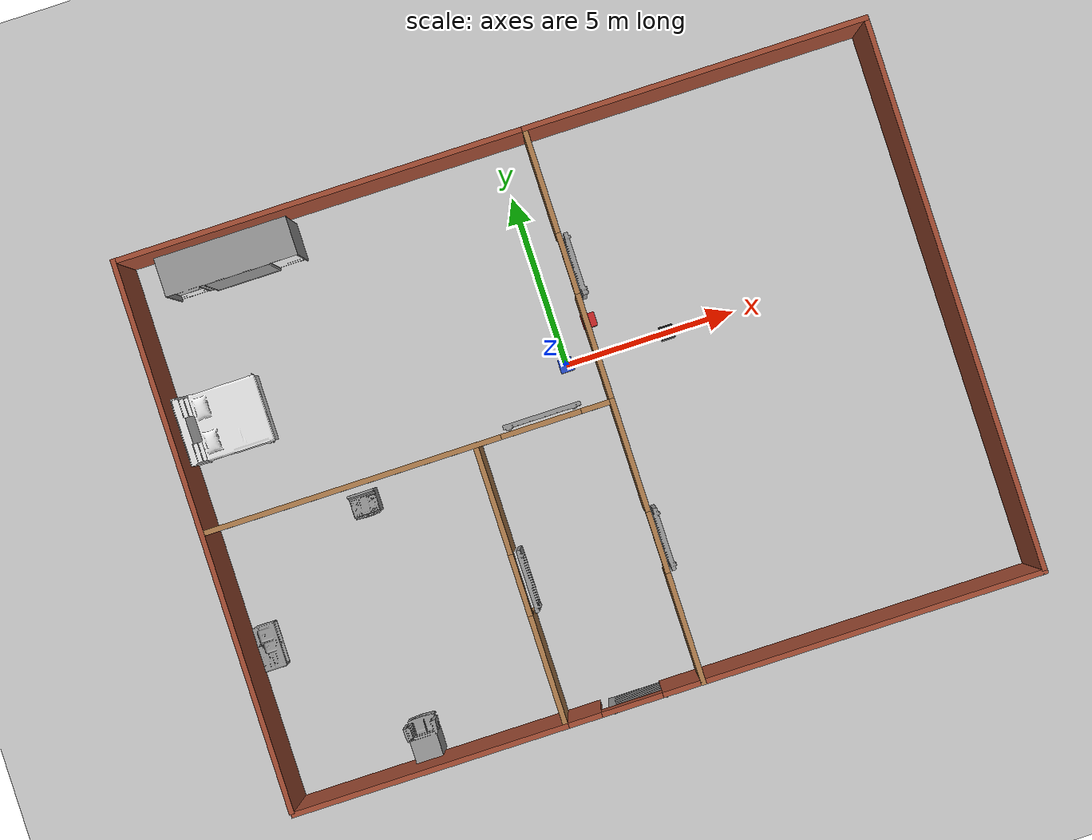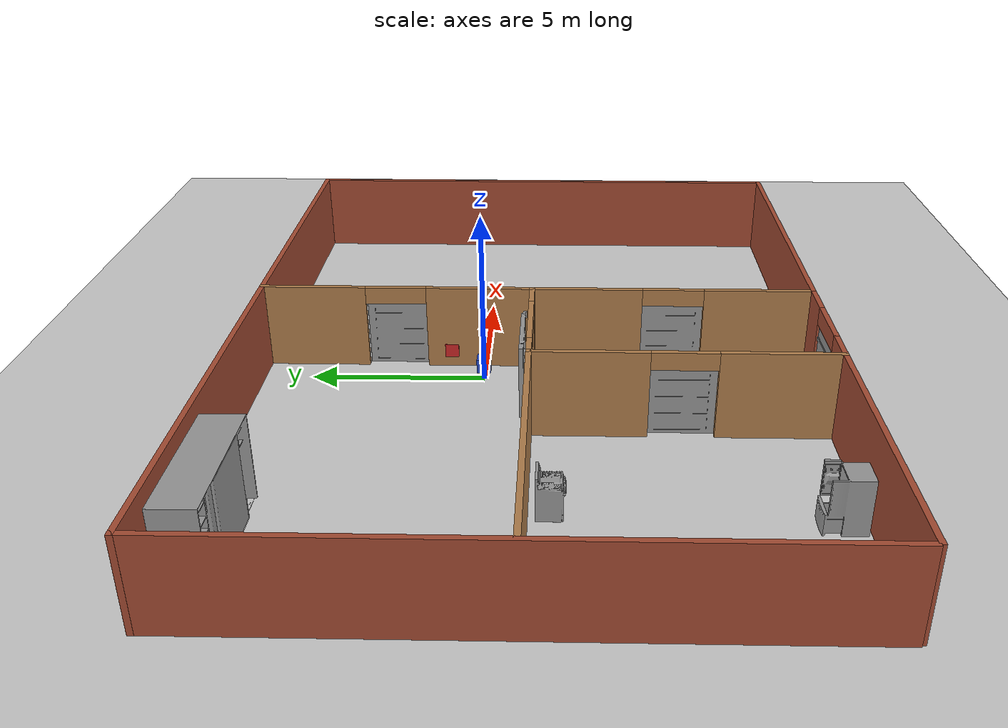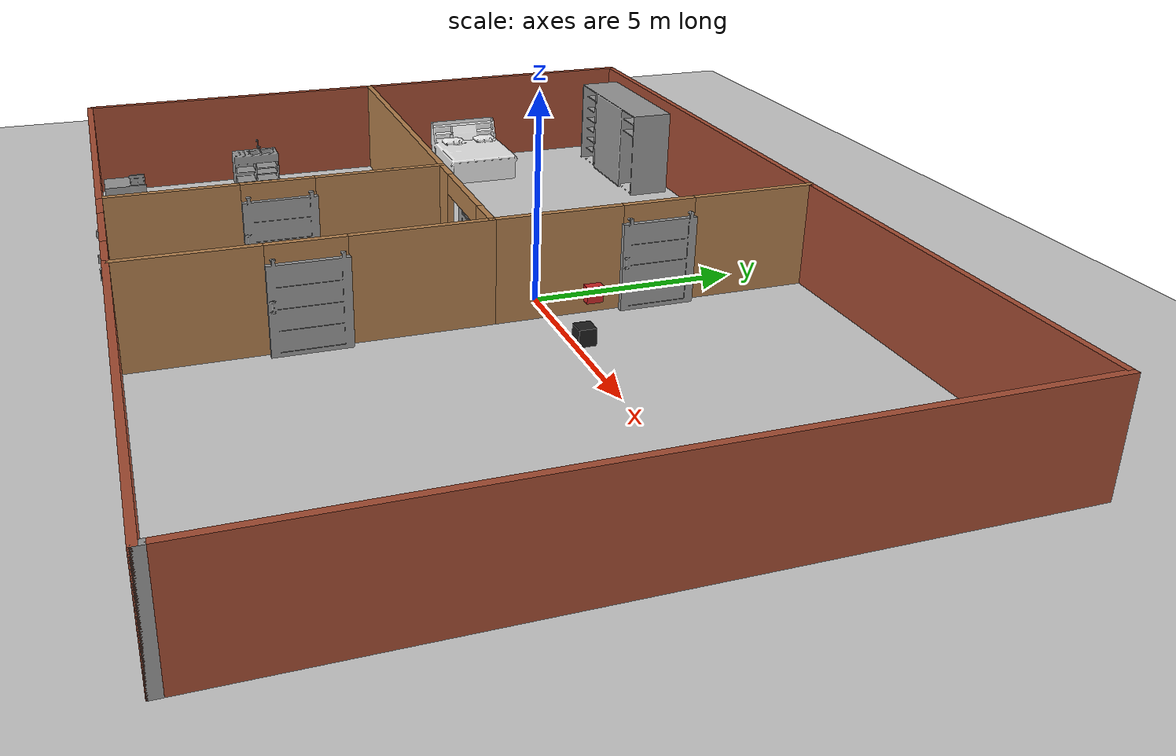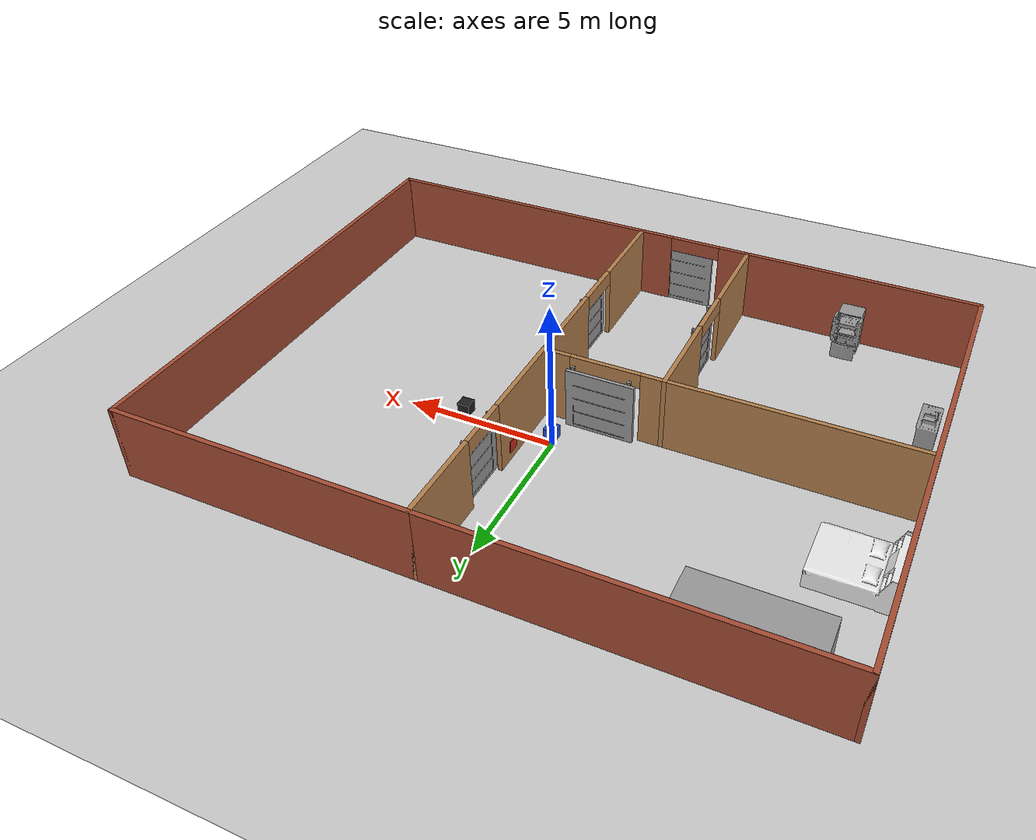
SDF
<sdf version="1.5">
 <world name="default">
  <frame name="world"/>
  <include><uri>model://sun</uri></include>
  <include><uri>model://ground_plane</uri></include>
  <include><uri>model://HouseWalls</uri><pose>-0.1 -1.5 0 0 0 0</pose></include>
  <include><pose>-8.1 7.7 0  0 0 1.57</pose><uri>model://Bed</uri></include>
  <include><pose>-7 -9 0  0 0 3.14</pose><uri>model://Fridge</uri></include>
  <include><pose>-10.4 -5 0 1.57 0 1.57</pose><uri>model://Sink</uri></include>
  <include><pose>-7 -2.3 0 1.57 0 0</pose><uri>model://Stove</uri></include>
  <include><pose>-8 5.76 0 0 0 0</pose><uri>model://Wardrobe</uri></include>
  <include><pose>-1.8 -9.5 0 0 0 0</pose><uri>model://DoorEntry</uri></include>
  <include>
   <pose>1.1 -6.35 0 0 0 1.57</pose>
   <uri>model://Door1</uri>
   <plugin name="door1" filename="libupdate_door.so"/>
  </include>
  <include>
   <pose>1.1 1.65 0 0 0 1.57</pose>
   <uri>model://Door2</uri>
   <plugin name="door2" filename="libupdate_door.so"/>
  </include>
  <include>
   <pose>-2.2 -1.15 0 0 0 0</pose>
   <uri>model://Door3</uri>
   <plugin name="door3" filename="libupdate_door.so"/>
  </include>
  <include>
   <pose>-2.85 -6.3 0  0 0 1.57</pose>
   <uri>model://Door4</uri>
   <plugin name="door3" filename="libupdate_door.so"/>
  </include>
  <model name="box1">
   <pose>0 0 0.5 0 0 0</pose>
   <link name="link">
    <inertial><mass>0.1</mass></inertial>
    <collision name="collision">
     <geometry><box><size>0.4 0.4 0.4</size></box></geometry>
     <surface>
      <friction><ode><mu>1000000000000000</mu><mu2>1000000000000</mu2></ode></friction>
      <contact><ode><max_vel>0.1</max_vel><min_depth>0.002</min_depth></ode></contact>
     </surface>
    </collision>
    <visual name="visual">
     <geometry><box><size>0.4 0.4 0.4</size></box></geometry>
     <material>
      <script><uri>file://media/materials/scripts/gazebo.material</uri><name>Gazebo/Blue</name></script>
     </material>
    </visual>
   </link>
   <plugin name="update_box" filename="libupdate_box.so"/>
  </model>
  <model name="box2">
   <pose>1 1 0.5 0 0 0</pose>
   <link name="link">
    <inertial><mass>0.1</mass></inertial>
    <collision name="collision">
     <geometry><box><size>0.4 0.4 0.4</size></box></geometry>
     <surface>
      <friction><ode><mu>1000000000000000</mu><mu2>1000000000000</mu2></ode></friction>
      <contact><ode><max_vel>0.1</max_vel><min_depth>0.002</min_depth></ode></contact>
     </surface>
    </collision>
    <visual name="visual">
     <geometry><box><size>0.4 0.4 0.4</size></box></geometry>
     <material>
      <script><uri>file://media/materials/scripts/gazebo.material</uri><name>Gazebo/Red</name></script>
     </material>
    </visual>
   </link>
   <plugin name="update_box" filename="libupdate_box.so"/>
  </model>
  <model name="box3">
   <pose>3 0 0.5 0 0 0</pose>
   <link name="link">
    <inertial><mass>0.1</mass></inertial>
    <collision name="collision">
     <geometry><box><size>0.4 0.4 0.4</size></box></geometry>
     <surface>
      <friction><ode><mu>1000000000000000</mu><mu2>1000000000000</mu2></ode></friction>
      <contact><ode><max_vel>0.1</max_vel><min_depth>0.002</min_depth></ode></contact>
     </surface>
    </collision>
    <visual name="visual">
     <geometry><box><size>0.4 0.4 0.4</size></box></geometry>
     <material>
      <script><uri>file://media/materials/scripts/gazebo.material</uri><name>Gazebo/Black</name></script>
     </material>
    </visual>
   </link>
   <plugin name="update_box" filename="libupdate_box.so"/>
  </model>
  <physics type="ode">
   <real_time_update_rate>1000.000000</real_time_update_rate>
   <max_step_size>0.001500</max_step_size>
  </physics>
 </world>
</sdf>

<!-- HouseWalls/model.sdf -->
<sdf version='1.7'>
  <model name='HouseWalls'>
    <pose>-4.14791 -1.35082 0 0 -0 0</pose>
    <link name='Wall_12'>
      <collision name='Wall_12_Collision'>
        <geometry>
          <box>
            <size>16 0.15 2.5</size>
          </box>
        </geometry>
        <pose>0 0 1.25 0 -0 0</pose>
      </collision>
      <visual name='Wall_12_Visual'>
        <pose>0 0 1.25 0 -0 0</pose>
        <geometry>
          <box>
            <size>16 0.15 2.5</size>
          </box>
        </geometry>
        <material>
          <script>
            <uri>file://media/materials/scripts/gazebo.material</uri>
            <name>Gazebo/Bricks</name>
          </script>
          <ambient>1 1 1 1</ambient>
        </material>
        <meta>
          <layer>0</layer>
        </meta>
      </visual>
      <pose>-10.85 0.05 0 0 -0 -1.5708</pose>
    </link>
    <link name='Wall_14'>
      <collision name='Wall_14_Collision'>
        <geometry>
          <box>
            <size>8 0.15 2.5</size>
          </box>
        </geometry>
        <pose>0 0 1.25 0 -0 0</pose>
      </collision>
      <visual name='Wall_14_Visual'>
        <pose>0 0 1.25 0 -0 0</pose>
        <geometry>
          <box>
            <size>8 0.15 2.5</size>
          </box>
        </geometry>
        <material>
          <script>
            <uri>file://media/materials/scripts/gazebo.material</uri>
            <name>Gazebo/Bricks</name>
          </script>
          <ambient>1 1 1 1</ambient>
        </material>
        <meta>
          <layer>0</layer>
        </meta>
      </visual>
      <pose>-6.88455 -7.975 0 0 -0 3.14159</pose>
    </link>
    <link name='Wall_17'>
      <pose>-4.925 0.125 0 0 -0 3.14159</pose>
      <visual name='Wall_17_Visual_0'>
        <pose>-5.51068 0 1.25 0 -0 0</pose>
        <geometry>
          <box>
            <size>0.978635 0.15 2.5</size>
          </box>
        </geometry>
        <material>
          <script>
            <uri>file://media/materials/scripts/gazebo.material</uri>
            <name>Gazebo/Wood</name>
          </script>
          <ambient>1 1 1 1</ambient>
        </material>
        <meta>
          <layer>0</layer>
        </meta>
      </visual>
      <collision name='Wall_17_Collision_0'>
        <geometry>
          <box>
            <size>0.978635 0.15 2.5</size>
          </box>
        </geometry>
        <pose>-5.51068 0 1.25 0 -0 0</pose>
      </collision>
      <visual name='Wall_17_Visual_1'>
        <pose>1.64329 0 1.25 0 -0 0</pose>
        <geometry>
          <box>
            <size>8.71341 0.15 2.5</size>
          </box>
        </geometry>
        <material>
          <script>
            <uri>file://media/materials/scripts/gazebo.material</uri>
            <name>Gazebo/Wood</name>
          </script>
          <ambient>1 1 1 1</ambient>
        </material>
        <meta>
          <layer>0</layer>
        </meta>
      </visual>
      <collision name='Wall_17_Collision_1'>
        <geometry>
          <box>
            <size>8.71341 0.15 2.5</size>
          </box>
        </geometry>
        <pose>1.64329 0 1.25 0 -0 0</pose>
      </collision>
      <visual name='Wall_17_Visual_2'>
        <pose>-3.86739 0 2.25 0 -0 0</pose>
        <geometry>
          <box>
            <size>2.30795 0.15 0.5</size>
          </box>
        </geometry>
        <material>
          <script>
            <uri>file://media/materials/scripts/gazebo.material</uri>
            <name>Gazebo/Wood</name>
          </script>
          <ambient>1 1 1 1</ambient>
        </material>
        <meta>
          <layer>0</layer>
        </meta>
      </visual>
      <collision name='Wall_17_Collision_2'>
        <geometry>
          <box>
            <size>2.30795 0.15 0.5</size>
          </box>
        </geometry>
        <pose>-3.86739 0 2.25 0 -0 0</pose>
      </collision>
    </link>
    <link name='Wall_19'>
      <pose>-2.95954 -3.925 0 0 -0 1.5708</pose>
      <visual name='Wall_19_Visual_0'>
        <pose>-2.49755 0 1.25 0 -0 0</pose>
        <geometry>
          <box>
            <size>3.25491 0.15 2.5</size>
          </box>
        </geometry>
        <material>
          <script>
            <uri>file://media/materials/scripts/gazebo.material</uri>
            <name>Gazebo/Wood</name>
          </script>
          <ambient>1 1 1 1</ambient>
        </material>
        <meta>
          <layer>0</layer>
        </meta>
      </visual>
      <collision name='Wall_19_Collision_0'>
        <geometry>
          <box>
            <size>3.25491 0.15 2.5</size>
          </box>
        </geometry>
        <pose>-2.49755 0 1.25 0 -0 0</pose>
      </collision>
      <visual name='Wall_19_Visual_1'>
        <pose>2.51471 0 1.25 0 -0 0</pose>
        <geometry>
          <box>
            <size>3.22059 0.15 2.5</size>
          </box>
        </geometry>
        <material>
          <script>
            <uri>file://media/materials/scripts/gazebo.material</uri>
            <name>Gazebo/Wood</name>
          </script>
          <ambient>1 1 1 1</ambient>
        </material>
        <meta>
          <layer>0</layer>
        </meta>
      </visual>
      <collision name='Wall_19_Collision_1'>
        <geometry>
          <box>
            <size>3.22059 0.15 2.5</size>
          </box>
        </geometry>
        <pose>2.51471 0 1.25 0 -0 0</pose>
      </collision>
      <visual name='Wall_19_Visual_2'>
        <pose>0.017162 0 2.25 0 -0 0</pose>
        <geometry>
          <box>
            <size>1.7745 0.15 0.5</size>
          </box>
        </geometry>
        <material>
          <script>
            <uri>file://media/materials/scripts/gazebo.material</uri>
            <name>Gazebo/Wood</name>
          </script>
          <ambient>1 1 1 1</ambient>
        </material>
        <meta>
          <layer>0</layer>
        </meta>
      </visual>
      <collision name='Wall_19_Collision_2'>
        <geometry>
          <box>
            <size>1.7745 0.15 0.5</size>
          </box>
        </geometry>
        <pose>0.017162 0 2.25 0 -0 0</pose>
      </collision>
    </link>
    <link name='Wall_22'>
      <pose>-1.03454 -7.975 0 0 -0 0</pose>
      <visual name='Wall_22_Visual_0'>
        <pose>-1.4444 0 1.25 0 -0 0</pose>
        <geometry>
          <box>
            <size>1.11121 0.15 2.5</size>
          </box>
        </geometry>
        <material>
          <script>
            <uri>file://media/materials/scripts/gazebo.material</uri>
            <name>Gazebo/Bricks</name>
          </script>
          <ambient>1 1 1 1</ambient>
        </material>
        <meta>
          <layer>0</layer>
        </meta>
      </visual>
      <collision name='Wall_22_Collision_0'>
        <geometry>
          <box>
            <size>1.11121 0.15 2.5</size>
          </box>
        </geometry>
        <pose>-1.4444 0 1.25 0 -0 0</pose>
      </collision>
      <visual name='Wall_22_Visual_1'>
        <pose>1.4356 0 1.25 0 -0 0</pose>
        <geometry>
          <box>
            <size>1.12879 0.15 2.5</size>
          </box>
        </geometry>
        <material>
          <script>
            <uri>file://media/materials/scripts/gazebo.material</uri>
            <name>Gazebo/Bricks</name>
          </script>
          <ambient>1 1 1 1</ambient>
        </material>
        <meta>
          <layer>0</layer>
        </meta>
      </visual>
      <collision name='Wall_22_Collision_1'>
        <geometry>
          <box>
            <size>1.12879 0.15 2.5</size>
          </box>
        </geometry>
        <pose>1.4356 0 1.25 0 -0 0</pose>
      </collision>
      <visual name='Wall_22_Visual_2'>
        <pose>-0.008793 0 2.25 0 -0 0</pose>
        <geometry>
          <box>
            <size>1.76 0.15 0.5</size>
          </box>
        </geometry>
        <material>
          <script>
            <uri>file://media/materials/scripts/gazebo.material</uri>
            <name>Gazebo/Bricks</name>
          </script>
          <ambient>1 1 1 1</ambient>
        </material>
        <meta>
          <layer>0</layer>
        </meta>
      </visual>
      <collision name='Wall_22_Collision_2'>
        <geometry>
          <box>
            <size>1.76 0.15 0.5</size>
          </box>
        </geometry>
        <pose>-0.008793 0 2.25 0 -0 0</pose>
      </collision>
    </link>
    <link name='Wall_24'>
      <pose>1 -3.925 0 0 -0 -1.5708</pose>
      <visual name='Wall_24_Visual_0'>
        <pose>-2.49284 0 1.25 0 -0 0</pose>
        <geometry>
          <box>
            <size>3.26431 0.15 2.5</size>
          </box>
        </geometry>
        <material>
          <script>
            <uri>file://media/materials/scripts/gazebo.material</uri>
            <name>Gazebo/Wood</name>
          </script>
          <ambient>1 1 1 1</ambient>
        </material>
        <meta>
          <layer>0</layer>
        </meta>
      </visual>
      <collision name='Wall_24_Collision_0'>
        <geometry>
          <box>
            <size>3.26431 0.15 2.5</size>
          </box>
        </geometry>
        <pose>-2.49284 0 1.25 0 -0 0</pose>
      </collision>
      <visual name='Wall_24_Visual_1'>
        <pose>2.51941 0 1.25 0 -0 0</pose>
        <geometry>
          <box>
            <size>3.21119 0.15 2.5</size>
          </box>
        </geometry>
        <material>
          <script>
            <uri>file://media/materials/scripts/gazebo.material</uri>
            <name>Gazebo/Wood</name>
          </script>
          <ambient>1 1 1 1</ambient>
        </material>
        <meta>
          <layer>0</layer>
        </meta>
      </visual>
      <collision name='Wall_24_Collision_1'>
        <geometry>
          <box>
            <size>3.21119 0.15 2.5</size>
          </box>
        </geometry>
        <pose>2.51941 0 1.25 0 -0 0</pose>
      </collision>
      <visual name='Wall_24_Visual_2'>
        <pose>0.026563 0 2.25 0 -0 0</pose>
        <geometry>
          <box>
            <size>1.7745 0.15 0.5</size>
          </box>
        </geometry>
        <material>
          <script>
            <uri>file://media/materials/scripts/gazebo.material</uri>
            <name>Gazebo/Wood</name>
          </script>
          <ambient>1 1 1 1</ambient>
        </material>
        <meta>
          <layer>0</layer>
        </meta>
      </visual>
      <collision name='Wall_24_Collision_2'>
        <geometry>
          <box>
            <size>1.7745 0.15 0.5</size>
          </box>
        </geometry>
        <pose>0.026563 0 2.25 0 -0 0</pose>
      </collision>
    </link>
    <link name='Wall_26'>
      <collision name='Wall_26_Collision'>
        <geometry>
          <box>
            <size>10 0.15 2.5</size>
          </box>
        </geometry>
        <pose>0 0 1.25 0 -0 0</pose>
      </collision>
      <visual name='Wall_26_Visual'>
        <pose>0 0 1.25 0 -0 0</pose>
        <geometry>
          <box>
            <size>10 0.15 2.5</size>
          </box>
        </geometry>
        <material>
          <script>
            <uri>file://media/materials/scripts/gazebo.material</uri>
            <name>Gazebo/Bricks</name>
          </script>
          <ambient>1 1 1 1</ambient>
        </material>
        <meta>
          <layer>0</layer>
        </meta>
      </visual>
      <pose>5.925 7.975 0 0 -0 0</pose>
    </link>
    <link name='Wall_27'>
      <collision name='Wall_27_Collision'>
        <geometry>
          <box>
            <size>16 0.15 2.5</size>
          </box>
        </geometry>
        <pose>0 0 1.25 0 -0 0</pose>
      </collision>
      <visual name='Wall_27_Visual'>
        <pose>0 0 1.25 0 -0 0</pose>
        <geometry>
          <box>
            <size>16 0.15 2.5</size>
          </box>
        </geometry>
        <material>
          <script>
            <uri>file://media/materials/scripts/gazebo.material</uri>
            <name>Gazebo/Bricks</name>
          </script>
          <ambient>1 1 1 1</ambient>
        </material>
        <meta>
          <layer>0</layer>
        </meta>
      </visual>
      <pose>10.85 0.05 0 0 -0 -1.5708</pose>
    </link>
    <link name='Wall_28'>
      <collision name='Wall_28_Collision'>
        <geometry>
          <box>
            <size>0.25 0.15 2.5</size>
          </box>
        </geometry>
        <pose>0 0 1.25 0 -0 0</pose>
      </collision>
      <visual name='Wall_28_Visual'>
        <pose>0 0 1.25 0 -0 0</pose>
        <geometry>
          <box>
            <size>0.25 0.15 2.5</size>
          </box>
        </geometry>
        <material>
          <script>
            <uri>file://media/materials/scripts/gazebo.material</uri>
            <name>Gazebo/Grey</name>
          </script>
          <ambient>1 1 1 1</ambient>
        </material>
        <meta>
          <layer>0</layer>
        </meta>
      </visual>
      <pose>10.85 -7.925 0 0 -0 -1.5708</pose>
    </link>
    <link name='Wall_29'>
      <collision name='Wall_29_Collision'>
        <geometry>
          <box>
            <size>10 0.15 2.5</size>
          </box>
        </geometry>
        <pose>0 0 1.25 0 -0 0</pose>
      </collision>
      <visual name='Wall_29_Visual'>
        <pose>0 0 1.25 0 -0 0</pose>
        <geometry>
          <box>
            <size>10 0.15 2.5</size>
          </box>
        </geometry>
        <material>
          <script>
            <uri>file://media/materials/scripts/gazebo.material</uri>
            <name>Gazebo/Bricks</name>
          </script>
          <ambient>1 1 1 1</ambient>
        </material>
        <meta>
          <layer>0</layer>
        </meta>
      </visual>
      <pose>5.925 -7.975 0 0 -0 3.14159</pose>
    </link>
    <link name='Wall_3'>
      <collision name='Wall_3_Collision'>
        <geometry>
          <box>
            <size>12 0.15 2.5</size>
          </box>
        </geometry>
        <pose>0 0 1.25 0 -0 0</pose>
      </collision>
      <visual name='Wall_3_Visual'>
        <pose>0 0 1.25 0 -0 0</pose>
        <geometry>
          <box>
            <size>12 0.15 2.5</size>
          </box>
        </geometry>
        <material>
          <script>
            <uri>file://media/materials/scripts/gazebo.material</uri>
            <name>Gazebo/Bricks</name>
          </script>
          <ambient>1 1 1 1</ambient>
        </material>
        <meta>
          <layer>0</layer>
        </meta>
      </visual>
      <pose>-4.925 7.975 0 0 -0 0</pose>
    </link>
    <link name='Wall_4'>
      <pose>1 4.05 0 0 -0 -1.5708</pose>
      <visual name='Wall_4_Visual_0'>
        <pose>-2.45945 0 1.25 0 -0 0</pose>
        <geometry>
          <box>
            <size>3.0811 0.15 2.5</size>
          </box>
        </geometry>
        <material>
          <script>
            <uri>file://media/materials/scripts/gazebo.material</uri>
            <name>Gazebo/Wood</name>
          </script>
          <ambient>1 1 1 1</ambient>
        </material>
        <meta>
          <layer>0</layer>
        </meta>
      </visual>
      <collision name='Wall_4_Collision_0'>
        <geometry>
          <box>
            <size>3.0811 0.15 2.5</size>
          </box>
        </geometry>
        <pose>-2.45945 0 1.25 0 -0 0</pose>
      </collision>
      <visual name='Wall_4_Visual_1'>
        <pose>2.41906 0 1.25 0 -0 0</pose>
        <geometry>
          <box>
            <size>3.16188 0.15 2.5</size>
          </box>
        </geometry>
        <material>
          <script>
            <uri>file://media/materials/scripts/gazebo.material</uri>
            <name>Gazebo/Wood</name>
          </script>
          <ambient>1 1 1 1</ambient>
        </material>
        <meta>
          <layer>0</layer>
        </meta>
      </visual>
      <collision name='Wall_4_Collision_1'>
        <geometry>
          <box>
            <size>3.16188 0.15 2.5</size>
          </box>
        </geometry>
        <pose>2.41906 0 1.25 0 -0 0</pose>
      </collision>
      <visual name='Wall_4_Visual_2'>
        <pose>-0.04039 0 2.25 0 -0 0</pose>
        <geometry>
          <box>
            <size>1.75701 0.15 0.5</size>
          </box>
        </geometry>
        <material>
          <script>
            <uri>file://media/materials/scripts/gazebo.material</uri>
            <name>Gazebo/Wood</name>
          </script>
          <ambient>1 1 1 1</ambient>
        </material>
        <meta>
          <layer>0</layer>
        </meta>
      </visual>
      <collision name='Wall_4_Collision_2'>
        <geometry>
          <box>
            <size>1.75701 0.15 0.5</size>
          </box>
        </geometry>
        <pose>-0.04039 0 2.25 0 -0 0</pose>
      </collision>
    </link>
    <static>1</static>
  </model>
</sdf>

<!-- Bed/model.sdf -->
<sdf version='1.7'>
  <model name='Bed'>
    <link name='bed_link'>
    <!-- link_11 -->
      <inertial>
        <mass>1</mass>
        <inertia>
          <ixx>0.166667</ixx>
          <ixy>0</ixy>
          <ixz>0</ixz>
          <iyy>0.166667</iyy>
          <iyz>0</iyz>
          <izz>0.166667</izz>
        </inertia>
        <pose>0 0 0 0 -0 0</pose>
      </inertial>
      <pose>-6.20984 1.12249 0 0 -0 0</pose>
      <gravity>1</gravity>
      <self_collide>0</self_collide>
      <kinematic>0</kinematic>
      <enable_wind>0</enable_wind>

      <visual name='visual'>
        <pose>0 0 0 0 -0 0</pose>
        <geometry>
          <mesh>
            <uri>model://Bed/mesh/bed.stl</uri>
            <scale>1 1 1</scale>
          </mesh>
        </geometry>
        <material>
          <lighting>1</lighting>
          <script>
            <uri>file://media/materials/scripts/gazebo.material</uri>
            <name>Gazebo/White</name>
          </script>
          <shader type='pixel'>
            <normal_map>__default__</normal_map>
          </shader>
          <ambient>0.3 0.3 0.3 1</ambient>
          <diffuse>0.7 0.7 0.7 1</diffuse>
          <specular>0.01 0.01 0.01 1</specular>
          <emissive>0 0 0 1</emissive>
        </material>
        <transparency>0</transparency>
        <cast_shadows>1</cast_shadows>
      </visual>

      <collision name='collision'>
        <laser_retro>0</laser_retro>
        <max_contacts>10</max_contacts>
        <pose>0 0 0 0 -0 0</pose>
        <geometry>
          <mesh>
            <uri>model://Bed/mesh/bed.stl</uri>
            <scale>1 1 1</scale>
          </mesh>
        </geometry>
        <surface>
          <friction>
            <ode>
              <mu>1</mu>
              <mu2>1</mu2>
              <fdir1>0 0 0</fdir1>
              <slip1>0</slip1>
              <slip2>0</slip2>
            </ode>
            <torsional>
              <coefficient>1</coefficient>
              <patch_radius>0</patch_radius>
              <surface_radius>0</surface_radius>
              <use_patch_radius>1</use_patch_radius>
              <ode>
                <slip>0</slip>
              </ode>
            </torsional>
          </friction>
          <bounce>
            <restitution_coefficient>0</restitution_coefficient>
            <threshold>1e+06</threshold>
          </bounce>
          <contact>
            <collide_without_contact>0</collide_without_contact>
            <collide_without_contact_bitmask>1</collide_without_contact_bitmask>
            <collide_bitmask>1</collide_bitmask>
            <ode>
              <soft_cfm>0</soft_cfm>
              <soft_erp>0.2</soft_erp>
              <kp>1e+13</kp>
              <kd>1</kd>
              <max_vel>0.01</max_vel>
              <min_depth>0</min_depth>
            </ode>
            <bullet>
              <split_impulse>1</split_impulse>
              <split_impulse_penetration_threshold>-0.01</split_impulse_penetration_threshold>
              <soft_cfm>0</soft_cfm>
              <soft_erp>0.2</soft_erp>
              <kp>1e+13</kp>
              <kd>1</kd>
            </bullet>
          </contact>
        </surface>
      </collision>
    </link>
    <static>1</static>
    <allow_auto_disable>1</allow_auto_disable>
  </model>
</sdf>

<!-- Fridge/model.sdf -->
<sdf version='1.7'>
  <model name='Fridge'>
    <link name='link_fridge'>
      <inertial>
        <mass>1</mass>
        <inertia>
          <ixx>0.166667</ixx>
          <ixy>0</ixy>
          <ixz>0</ixz>
          <iyy>0.166667</iyy>
          <iyz>0</iyz>
          <izz>0.166667</izz>
        </inertia>
        <pose>0 0 0 0 -0 0</pose>
      </inertial>
      <pose>0 -0 0 0 -0 0</pose>
      <gravity>1</gravity>
      <self_collide>0</self_collide>
      <kinematic>0</kinematic>
      <enable_wind>0</enable_wind>
      <visual name='visual'>
        <pose>0 0 0 0 -0 0</pose>
        <geometry>
          <mesh>
            <uri>model://Fridge/mesh/Samsung_Fridge_low.stl</uri>
            <scale>2.2 2.2 2.2</scale>
          </mesh>
        </geometry>
        <material>
          <lighting>1</lighting>
          <script>
            <uri>file://media/materials/scripts/gazebo.material</uri>
            <name>Gazebo/Grey</name>
          </script>
          <shader type='pixel'>
            <normal_map>__default__</normal_map>
          </shader>
          <ambient>0.3 0.3 0.3 1</ambient>
          <diffuse>0.7 0.7 0.7 1</diffuse>
          <specular>0.01 0.01 0.01 1</specular>
          <emissive>0 0 0 1</emissive>
        </material>
        <transparency>0</transparency>
        <cast_shadows>1</cast_shadows>
      </visual>
      <collision name='collision_1'>
        <laser_retro>0</laser_retro>
        <max_contacts>10</max_contacts>
        <pose>0 -0.23 0.77 0 -0 0</pose>
        <geometry>
          <box>
            <size>1.0044 1.13962 1.55047</size>
          </box>
        </geometry>
        <surface>
          <friction>
            <ode>
              <mu>1</mu>
              <mu2>1</mu2>
              <fdir1>0 0 0</fdir1>
              <slip1>0</slip1>
              <slip2>0</slip2>
            </ode>
            <torsional>
              <coefficient>1</coefficient>
              <patch_radius>0</patch_radius>
              <surface_radius>0</surface_radius>
              <use_patch_radius>1</use_patch_radius>
              <ode>
                <slip>0</slip>
              </ode>
            </torsional>
          </friction>
          <bounce>
            <restitution_coefficient>0</restitution_coefficient>
            <threshold>1e+06</threshold>
          </bounce>
          <contact>
            <collide_without_contact>0</collide_without_contact>
            <collide_without_contact_bitmask>1</collide_without_contact_bitmask>
            <collide_bitmask>1</collide_bitmask>
            <ode>
              <soft_cfm>0</soft_cfm>
              <soft_erp>0.2</soft_erp>
              <kp>1e+13</kp>
              <kd>1</kd>
              <max_vel>0.01</max_vel>
              <min_depth>0</min_depth>
            </ode>
            <bullet>
              <split_impulse>1</split_impulse>
              <split_impulse_penetration_threshold>-0.01</split_impulse_penetration_threshold>
              <soft_cfm>0</soft_cfm>
              <soft_erp>0.2</soft_erp>
              <kp>1e+13</kp>
              <kd>1</kd>
            </bullet>
          </contact>
        </surface>
      </collision>
    </link>
    <static>1</static>
    <allow_auto_disable>1</allow_auto_disable>
  </model>
</sdf>

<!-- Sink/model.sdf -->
<sdf version='1.7'>
  <model name='sink'>
    <link name='link_sink'>
      <inertial>
        <mass>1</mass>
        <inertia>
          <ixx>0.166667</ixx>
          <ixy>0</ixy>
          <ixz>0</ixz>
          <iyy>0.166667</iyy>
          <iyz>0</iyz>
          <izz>0.166667</izz>
        </inertia>
        <pose>0 0 0 0 -0 0</pose>
      </inertial>
      <pose>-0 0 0 0 -0 0</pose>
      <gravity>1</gravity>
      <self_collide>0</self_collide>
      <kinematic>0</kinematic>
      <enable_wind>0</enable_wind>
      <visual name='visual'>
        <pose>0 0 0 0 -0 0</pose>
        <geometry>
          <mesh>
            <uri>model://Sink/mesh/Faucet.stl</uri>
            <scale>1 1 1</scale>
          </mesh>
        </geometry>
        <material>
          <lighting>1</lighting>
          <script>
            <uri>file://media/materials/scripts/gazebo.material</uri>
            <name>Gazebo/Grey</name>
          </script>
          <shader type='pixel'>
            <normal_map>__default__</normal_map>
          </shader>
          <ambient>0.3 0.3 0.3 1</ambient>
          <diffuse>0.7 0.7 0.7 1</diffuse>
          <specular>0.01 0.01 0.01 1</specular>
          <emissive>0 0 0 1</emissive>
        </material>
        <transparency>0</transparency>
        <cast_shadows>1</cast_shadows>
      </visual>
      <collision name='collision'>
        <laser_retro>0</laser_retro>
        <max_contacts>10</max_contacts>
        <pose>0 0 0 0 -0 0</pose>
        <geometry>
          <mesh>
            <uri>model://Sink/mesh/Faucet.stl</uri>
            <scale>1 1 1</scale>
          </mesh>
        </geometry>
        <surface>
          <friction>
            <ode>
              <mu>1</mu>
              <mu2>1</mu2>
              <fdir1>0 0 0</fdir1>
              <slip1>0</slip1>
              <slip2>0</slip2>
            </ode>
            <torsional>
              <coefficient>1</coefficient>
              <patch_radius>0</patch_radius>
              <surface_radius>0</surface_radius>
              <use_patch_radius>1</use_patch_radius>
              <ode>
                <slip>0</slip>
              </ode>
            </torsional>
          </friction>
          <bounce>
            <restitution_coefficient>0</restitution_coefficient>
            <threshold>1e+06</threshold>
          </bounce>
          <contact>
            <collide_without_contact>0</collide_without_contact>
            <collide_without_contact_bitmask>1</collide_without_contact_bitmask>
            <collide_bitmask>1</collide_bitmask>
            <ode>
              <soft_cfm>0</soft_cfm>
              <soft_erp>0.2</soft_erp>
              <kp>1e+13</kp>
              <kd>1</kd>
              <max_vel>0.01</max_vel>
              <min_depth>0</min_depth>
            </ode>
            <bullet>
              <split_impulse>1</split_impulse>
              <split_impulse_penetration_threshold>-0.01</split_impulse_penetration_threshold>
              <soft_cfm>0</soft_cfm>
              <soft_erp>0.2</soft_erp>
              <kp>1e+13</kp>
              <kd>1</kd>
            </bullet>
          </contact>
        </surface>
      </collision>
    </link>
    <static>1</static>
    <allow_auto_disable>1</allow_auto_disable>
  </model>
</sdf>

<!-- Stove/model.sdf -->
<sdf version='1.7'>
  <model name='stove'>
    <link name='link_stove'>
      <inertial>
        <mass>1</mass>
        <inertia>
          <ixx>0.166667</ixx>
          <ixy>0</ixy>
          <ixz>0</ixz>
          <iyy>0.166667</iyy>
          <iyz>0</iyz>
          <izz>0.166667</izz>
        </inertia>
      </inertial>
      <pose>-3e-06 3e-06 0 0 -0 0</pose>
      <visual name='visual'>
        <pose>0 0 0 0 -0 0</pose>
        <geometry>
          <mesh>
            <uri>model://Stove/mesh/stove.stl</uri>
            <scale>1 1 1</scale>
          </mesh>
        </geometry>
        <material>
          <lighting>1</lighting>
          <script>
            <uri>file://media/materials/scripts/gazebo.material</uri>
            <name>Gazebo/Grey</name>
          </script>
          <shader type='pixel'/>
        </material>
        <transparency>0</transparency>
        <cast_shadows>1</cast_shadows>
      </visual>
      <collision name='collision'>
        <laser_retro>0</laser_retro>
        <max_contacts>10</max_contacts>
        <pose>0 0 0 0 -0 0</pose>
        <geometry>
          <mesh>
            <uri>model://Stove/mesh/stove.stl</uri>
            <scale>1 1 1</scale>
          </mesh>
        </geometry>
        <surface>
          <friction>
            <ode>
              <mu>1</mu>
              <mu2>1</mu2>
              <fdir1>0 0 0</fdir1>
              <slip1>0</slip1>
              <slip2>0</slip2>
            </ode>
            <torsional>
              <coefficient>1</coefficient>
              <patch_radius>0</patch_radius>
              <surface_radius>0</surface_radius>
              <use_patch_radius>1</use_patch_radius>
              <ode>
                <slip>0</slip>
              </ode>
            </torsional>
          </friction>
          <bounce>
            <restitution_coefficient>0</restitution_coefficient>
            <threshold>1e+06</threshold>
          </bounce>
          <contact>
            <collide_without_contact>0</collide_without_contact>
            <collide_without_contact_bitmask>1</collide_without_contact_bitmask>
            <collide_bitmask>1</collide_bitmask>
            <ode>
              <soft_cfm>0</soft_cfm>
              <soft_erp>0.2</soft_erp>
              <kp>1e+13</kp>
              <kd>1</kd>
              <max_vel>0.01</max_vel>
              <min_depth>0</min_depth>
            </ode>
            <bullet>
              <split_impulse>1</split_impulse>
              <split_impulse_penetration_threshold>-0.01</split_impulse_penetration_threshold>
              <soft_cfm>0</soft_cfm>
              <soft_erp>0.2</soft_erp>
              <kp>1e+13</kp>
              <kd>1</kd>
            </bullet>
          </contact>
        </surface>
      </collision>
    </link>
    <static>1</static>
    <allow_auto_disable>1</allow_auto_disable>
  </model>
</sdf>

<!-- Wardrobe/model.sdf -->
<sdf version='1.7'>
  <model name='wardrobe'>
    <link name='link_wardrobe'>
      <inertial>
        <mass>1</mass>
        <inertia>
          <ixx>0.166667</ixx>
          <ixy>0</ixy>
          <ixz>0</ixz>
          <iyy>0.166667</iyy>
          <iyz>0</iyz>
          <izz>0.166667</izz>
        </inertia>
      </inertial>
      <pose>3e-06 3e-06 0 0 -0 0</pose>
      <visual name='visual'>
        <pose>0 0 0 0 -0 0</pose>
        <geometry>
          <mesh>
            <uri>model://Wardrobe/mesh/Wooden_wardrobe.stl</uri>
            <scale>0.8 0.8 0.5</scale>
          </mesh>
        </geometry>
        <material>
          <lighting>1</lighting>
          <script>
            <uri>file://media/materials/scripts/gazebo.material</uri>
            <name>Gazebo/Grey</name>
          </script>
          <shader type='pixel'/>
        </material>
        <transparency>0</transparency>
        <cast_shadows>1</cast_shadows>
      </visual>
      <collision name='collision'>
        <laser_retro>0</laser_retro>
        <max_contacts>10</max_contacts>
        <pose>0 0 0 0 -0 0</pose>
        <geometry>
          <mesh>
            <uri>model://Wardrobe/mesh/Wooden_wardrobe.stl</uri>
            <scale>0.8 0.8 0.6</scale>
          </mesh>
        </geometry>
        <surface>
          <friction>
            <ode>
              <mu>1</mu>
              <mu2>1</mu2>
              <fdir1>0 0 0</fdir1>
              <slip1>0</slip1>
              <slip2>0</slip2>
            </ode>
            <torsional>
              <coefficient>1</coefficient>
              <patch_radius>0</patch_radius>
              <surface_radius>0</surface_radius>
              <use_patch_radius>1</use_patch_radius>
              <ode>
                <slip>0</slip>
              </ode>
            </torsional>
          </friction>
          <bounce>
            <restitution_coefficient>0</restitution_coefficient>
            <threshold>1e+06</threshold>
          </bounce>
          <contact>
            <collide_without_contact>0</collide_without_contact>
            <collide_without_contact_bitmask>1</collide_without_contact_bitmask>
            <collide_bitmask>1</collide_bitmask>
            <ode>
              <soft_cfm>0</soft_cfm>
              <soft_erp>0.2</soft_erp>
              <kp>1e+13</kp>
              <kd>1</kd>
              <max_vel>0.01</max_vel>
              <min_depth>0</min_depth>
            </ode>
            <bullet>
              <split_impulse>1</split_impulse>
              <split_impulse_penetration_threshold>-0.01</split_impulse_penetration_threshold>
              <soft_cfm>0</soft_cfm>
              <soft_erp>0.2</soft_erp>
              <kp>1e+13</kp>
              <kd>1</kd>
            </bullet>
          </contact>
        </surface>
      </collision>
    </link>
    <static>1</static>
    <allow_auto_disable>1</allow_auto_disable>
  </model>
</sdf>

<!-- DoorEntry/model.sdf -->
<sdf version='1.7'>
  <model name='DoorEntry'>
    <link name='DoorEntry'>
      <inertial>
        <mass>1</mass>
        <inertia>
          <ixx>0.166667</ixx>
          <ixy>0</ixy>
          <ixz>0</ixz>
          <iyy>0.166667</iyy>
          <iyz>0</iyz>
          <izz>0.166667</izz>
        </inertia>
        <pose>0 0 0 0 -0 0</pose>
      </inertial>
      <pose>0 0 0 0 -0 0</pose>
      <gravity>1</gravity>
      <self_collide>0</self_collide>
      <kinematic>0</kinematic>
      <enable_wind>0</enable_wind>
      <visual name='visual'>
        <pose>0 0 0 1.57 -0 0</pose>
        <geometry>
          <mesh>
            <uri>model://DoorEntry/mesh/door.stl</uri>
            <scale>4 2 3</scale>
          </mesh>
        </geometry>
        <material>
          <lighting>1</lighting>
          <script>
            <uri>file://media/materials/scripts/gazebo.material</uri>
            <name>Gazebo/Grey</name>
          </script>
          <shader type='pixel'>
            <normal_map>__default__</normal_map>
          </shader>
          <ambient>0.3 0.3 0.3 1</ambient>
          <diffuse>0.7 0.7 0.7 1</diffuse>
          <specular>0.01 0.01 0.01 1</specular>
          <emissive>0 0 0 1</emissive>
        </material>
        <transparency>0</transparency>
        <cast_shadows>1</cast_shadows>
      </visual>
      <collision name='collision'>
        <laser_retro>0</laser_retro>
        <max_contacts>10</max_contacts>
        <pose>0 0 0 1.57 -0 0</pose>
        <geometry>
          <mesh>
            <uri>model://DoorEntry/mesh/door.stl</uri>
            <scale>4 2 3</scale>
          </mesh>
        </geometry>
        <surface>
          <friction>
            <ode>
              <mu>1</mu>
              <mu2>1</mu2>
              <fdir1>0 0 0</fdir1>
              <slip1>0</slip1>
              <slip2>0</slip2>
            </ode>
            <torsional>
              <coefficient>1</coefficient>
              <patch_radius>0</patch_radius>
              <surface_radius>0</surface_radius>
              <use_patch_radius>1</use_patch_radius>
              <ode>
                <slip>0</slip>
              </ode>
            </torsional>
          </friction>
          <bounce>
            <restitution_coefficient>0</restitution_coefficient>
            <threshold>1e+06</threshold>
          </bounce>
          <contact>
            <collide_without_contact>0</collide_without_contact>
            <collide_without_contact_bitmask>1</collide_without_contact_bitmask>
            <collide_bitmask>1</collide_bitmask>
            <ode>
              <soft_cfm>0</soft_cfm>
              <soft_erp>0.2</soft_erp>
              <kp>1e+13</kp>
              <kd>1</kd>
              <max_vel>0.01</max_vel>
              <min_depth>0</min_depth>
            </ode>
            <bullet>
              <split_impulse>1</split_impulse>
              <split_impulse_penetration_threshold>-0.01</split_impulse_penetration_threshold>
              <soft_cfm>0</soft_cfm>
              <soft_erp>0.2</soft_erp>
              <kp>1e+13</kp>
              <kd>1</kd>
            </bullet>
          </contact>
        </surface>
      </collision>
    </link>
    <static>1</static>
    <allow_auto_disable>1</allow_auto_disable>
  </model>
</sdf>

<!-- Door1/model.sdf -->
<sdf version='1.7'>
  <model name='Door1'>
    <link name='Door1'>
      <inertial>
        <mass>1</mass>
        <inertia>
          <ixx>0.166667</ixx>
          <ixy>0</ixy>
          <ixz>0</ixz>
          <iyy>0.166667</iyy>
          <iyz>0</iyz>
          <izz>0.166667</izz>
        </inertia>
        <pose>0 0 0 0 -0 0</pose>
      </inertial>
      <pose>0 0 0 0 -0 0</pose>
      <gravity>1</gravity>
      <self_collide>0</self_collide>
      <kinematic>0</kinematic>
      <enable_wind>0</enable_wind>
      <visual name='visual'>
        <pose>0 0 0 1.57 -0 0</pose>
        <geometry>
          <mesh>
            <uri>model://Door1/mesh/door.stl</uri>
            <scale>4 2 3</scale>
          </mesh>
        </geometry>
        <material>
          <lighting>1</lighting>
          <script>
            <uri>file://media/materials/scripts/gazebo.material</uri>
            <name>Gazebo/Grey</name>
          </script>
          <shader type='pixel'>
            <normal_map>__default__</normal_map>
          </shader>
          <ambient>0.3 0.3 0.3 1</ambient>
          <diffuse>0.7 0.7 0.7 1</diffuse>
          <specular>0.01 0.01 0.01 1</specular>
          <emissive>0 0 0 1</emissive>
        </material>
        <transparency>0</transparency>
        <cast_shadows>1</cast_shadows>
      </visual>
      <collision name='collision'>
        <laser_retro>0</laser_retro>
        <max_contacts>10</max_contacts>
        <pose>0 0 0 1.57 -0 0</pose>
        <geometry>
          <mesh>
            <uri>model://Door1/mesh/door.stl</uri>
            <scale>4 2 3</scale>
          </mesh>
        </geometry>
        <surface>
          <friction>
            <ode>
              <mu>1</mu>
              <mu2>1</mu2>
              <fdir1>0 0 0</fdir1>
              <slip1>0</slip1>
              <slip2>0</slip2>
            </ode>
            <torsional>
              <coefficient>1</coefficient>
              <patch_radius>0</patch_radius>
              <surface_radius>0</surface_radius>
              <use_patch_radius>1</use_patch_radius>
              <ode>
                <slip>0</slip>
              </ode>
            </torsional>
          </friction>
          <bounce>
            <restitution_coefficient>0</restitution_coefficient>
            <threshold>1e+06</threshold>
          </bounce>
          <contact>
            <collide_without_contact>0</collide_without_contact>
            <collide_without_contact_bitmask>1</collide_without_contact_bitmask>
            <collide_bitmask>1</collide_bitmask>
            <ode>
              <soft_cfm>0</soft_cfm>
              <soft_erp>0.2</soft_erp>
              <kp>1e+13</kp>
              <kd>1</kd>
              <max_vel>0.01</max_vel>
              <min_depth>0</min_depth>
            </ode>
            <bullet>
              <split_impulse>1</split_impulse>
              <split_impulse_penetration_threshold>-0.01</split_impulse_penetration_threshold>
              <soft_cfm>0</soft_cfm>
              <soft_erp>0.2</soft_erp>
              <kp>1e+13</kp>
              <kd>1</kd>
            </bullet>
          </contact>
        </surface>
      </collision>
    </link>
    <static>1</static>
    <allow_auto_disable>1</allow_auto_disable>
  </model>
</sdf>

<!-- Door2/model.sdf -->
<sdf version='1.7'>
  <model name='Door2'>
    <link name='Door2'>
      <inertial>
        <mass>1</mass>
        <inertia>
          <ixx>0.166667</ixx>
          <ixy>0</ixy>
          <ixz>0</ixz>
          <iyy>0.166667</iyy>
          <iyz>0</iyz>
          <izz>0.166667</izz>
        </inertia>
        <pose>0 0 0 0 -0 0</pose>
      </inertial>
      <pose>0 0 0 0 -0 0</pose>
      <gravity>1</gravity>
      <self_collide>0</self_collide>
      <kinematic>0</kinematic>
      <enable_wind>0</enable_wind>
      <visual name='visual'>
        <pose>0 0 0 1.57 -0 0</pose>
        <geometry>
          <mesh>
            <uri>model://Door2/mesh/door.stl</uri>
            <scale>4 2 3</scale>
          </mesh>
        </geometry>
        <material>
          <lighting>1</lighting>
          <script>
            <uri>file://media/materials/scripts/gazebo.material</uri>
            <name>Gazebo/Grey</name>
          </script>
          <shader type='pixel'>
            <normal_map>__default__</normal_map>
          </shader>
          <ambient>0.3 0.3 0.3 1</ambient>
          <diffuse>0.7 0.7 0.7 1</diffuse>
          <specular>0.01 0.01 0.01 1</specular>
          <emissive>0 0 0 1</emissive>
        </material>
        <transparency>0</transparency>
        <cast_shadows>1</cast_shadows>
      </visual>
      <collision name='collision'>
        <laser_retro>0</laser_retro>
        <max_contacts>10</max_contacts>
        <pose>0 0 0 1.57 -0 0</pose>
        <geometry>
          <mesh>
            <uri>model://Door2/mesh/door.stl</uri>
            <scale>4 2 3</scale>
          </mesh>
        </geometry>
        <surface>
          <friction>
            <ode>
              <mu>1</mu>
              <mu2>1</mu2>
              <fdir1>0 0 0</fdir1>
              <slip1>0</slip1>
              <slip2>0</slip2>
            </ode>
            <torsional>
              <coefficient>1</coefficient>
              <patch_radius>0</patch_radius>
              <surface_radius>0</surface_radius>
              <use_patch_radius>1</use_patch_radius>
              <ode>
                <slip>0</slip>
              </ode>
            </torsional>
          </friction>
          <bounce>
            <restitution_coefficient>0</restitution_coefficient>
            <threshold>1e+06</threshold>
          </bounce>
          <contact>
            <collide_without_contact>0</collide_without_contact>
            <collide_without_contact_bitmask>1</collide_without_contact_bitmask>
            <collide_bitmask>1</collide_bitmask>
            <ode>
              <soft_cfm>0</soft_cfm>
              <soft_erp>0.2</soft_erp>
              <kp>1e+13</kp>
              <kd>1</kd>
              <max_vel>0.01</max_vel>
              <min_depth>0</min_depth>
            </ode>
            <bullet>
              <split_impulse>1</split_impulse>
              <split_impulse_penetration_threshold>-0.01</split_impulse_penetration_threshold>
              <soft_cfm>0</soft_cfm>
              <soft_erp>0.2</soft_erp>
              <kp>1e+13</kp>
              <kd>1</kd>
            </bullet>
          </contact>
        </surface>
      </collision>
    </link>
    <static>1</static>
    <allow_auto_disable>1</allow_auto_disable>
  </model>
</sdf>

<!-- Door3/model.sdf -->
<sdf version='1.7'>
  <model name='Door3'>
    <link name='Door3'>
      <inertial>
        <mass>1</mass>
        <inertia>
          <ixx>0.166667</ixx>
          <ixy>0</ixy>
          <ixz>0</ixz>
          <iyy>0.166667</iyy>
          <iyz>0</iyz>
          <izz>0.166667</izz>
        </inertia>
        <pose>0 0 0 0 -0 0</pose>
      </inertial>
      <pose>0 0 0 0 -0 0</pose>
      <gravity>1</gravity>
      <self_collide>0</self_collide>
      <kinematic>0</kinematic>
      <enable_wind>0</enable_wind>
      <visual name='visual'>
        <pose>0 0 0 1.57 -0 0</pose>
        <geometry>
          <mesh>
            <uri>model://Door3/mesh/door.stl</uri>
            <scale>5 2 3</scale>
          </mesh>
        </geometry>
        <material>
          <lighting>1</lighting>
          <script>
            <uri>file://media/materials/scripts/gazebo.material</uri>
            <name>Gazebo/Grey</name>
          </script>
          <shader type='pixel'>
            <normal_map>__default__</normal_map>
          </shader>
          <ambient>0.3 0.3 0.3 1</ambient>
          <diffuse>0.7 0.7 0.7 1</diffuse>
          <specular>0.01 0.01 0.01 1</specular>
          <emissive>0 0 0 1</emissive>
        </material>
        <transparency>0</transparency>
        <cast_shadows>1</cast_shadows>
      </visual>
      <collision name='collision'>
        <laser_retro>0</laser_retro>
        <max_contacts>10</max_contacts>
        <pose>0 0 0 1.57 -0 0</pose>
        <geometry>
          <mesh>
            <uri>model://Door3/mesh/door.stl</uri>
            <scale>5 2 3</scale>
          </mesh>
        </geometry>
        <surface>
          <friction>
            <ode>
              <mu>1</mu>
              <mu2>1</mu2>
              <fdir1>0 0 0</fdir1>
              <slip1>0</slip1>
              <slip2>0</slip2>
            </ode>
            <torsional>
              <coefficient>1</coefficient>
              <patch_radius>0</patch_radius>
              <surface_radius>0</surface_radius>
              <use_patch_radius>1</use_patch_radius>
              <ode>
                <slip>0</slip>
              </ode>
            </torsional>
          </friction>
          <bounce>
            <restitution_coefficient>0</restitution_coefficient>
            <threshold>1e+06</threshold>
          </bounce>
          <contact>
            <collide_without_contact>0</collide_without_contact>
            <collide_without_contact_bitmask>1</collide_without_contact_bitmask>
            <collide_bitmask>1</collide_bitmask>
            <ode>
              <soft_cfm>0</soft_cfm>
              <soft_erp>0.2</soft_erp>
              <kp>1e+13</kp>
              <kd>1</kd>
              <max_vel>0.01</max_vel>
              <min_depth>0</min_depth>
            </ode>
            <bullet>
              <split_impulse>1</split_impulse>
              <split_impulse_penetration_threshold>-0.01</split_impulse_penetration_threshold>
              <soft_cfm>0</soft_cfm>
              <soft_erp>0.2</soft_erp>
              <kp>1e+13</kp>
              <kd>1</kd>
            </bullet>
          </contact>
        </surface>
      </collision>
    </link>
    <static>1</static>
    <allow_auto_disable>1</allow_auto_disable>
  </model>
</sdf>

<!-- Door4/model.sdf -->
<sdf version='1.7'>
  <model name='Door4'>
    <link name='Door4'>
      <inertial>
        <mass>1</mass>
        <inertia>
          <ixx>0.166667</ixx>
          <ixy>0</ixy>
          <ixz>0</ixz>
          <iyy>0.166667</iyy>
          <iyz>0</iyz>
          <izz>0.166667</izz>
        </inertia>
        <pose>0 0 0 0 -0 0</pose>
      </inertial>
      <pose>0 0 0 0 -0 0</pose>
      <gravity>1</gravity>
      <self_collide>0</self_collide>
      <kinematic>0</kinematic>
      <enable_wind>0</enable_wind>
      <visual name='visual'>
        <pose>0 0 0 1.57 -0 0</pose>
        <geometry>
          <mesh>
            <uri>model://Door4/mesh/door.stl</uri>
            <scale>4 2 3</scale>
          </mesh>
        </geometry>
        <material>
          <lighting>1</lighting>
          <script>
            <uri>file://media/materials/scripts/gazebo.material</uri>
            <name>Gazebo/Grey</name>
          </script>
          <shader type='pixel'>
            <normal_map>__default__</normal_map>
          </shader>
          <ambient>0.3 0.3 0.3 1</ambient>
          <diffuse>0.7 0.7 0.7 1</diffuse>
          <specular>0.01 0.01 0.01 1</specular>
          <emissive>0 0 0 1</emissive>
        </material>
        <transparency>0</transparency>
        <cast_shadows>1</cast_shadows>
      </visual>
      <collision name='collision'>
        <laser_retro>0</laser_retro>
        <max_contacts>10</max_contacts>
        <pose>0 0 0 1.57 -0 0</pose>
        <geometry>
          <mesh>
            <uri>model://Door4/mesh/door.stl</uri>
            <scale>4 2 3</scale>
          </mesh>
        </geometry>
        <surface>
          <friction>
            <ode>
              <mu>1</mu>
              <mu2>1</mu2>
              <fdir1>0 0 0</fdir1>
              <slip1>0</slip1>
              <slip2>0</slip2>
            </ode>
            <torsional>
              <coefficient>1</coefficient>
              <patch_radius>0</patch_radius>
              <surface_radius>0</surface_radius>
              <use_patch_radius>1</use_patch_radius>
              <ode>
                <slip>0</slip>
              </ode>
            </torsional>
          </friction>
          <bounce>
            <restitution_coefficient>0</restitution_coefficient>
            <threshold>1e+06</threshold>
          </bounce>
          <contact>
            <collide_without_contact>0</collide_without_contact>
            <collide_without_contact_bitmask>1</collide_without_contact_bitmask>
            <collide_bitmask>1</collide_bitmask>
            <ode>
              <soft_cfm>0</soft_cfm>
              <soft_erp>0.2</soft_erp>
              <kp>1e+13</kp>
              <kd>1</kd>
              <max_vel>0.01</max_vel>
              <min_depth>0</min_depth>
            </ode>
            <bullet>
              <split_impulse>1</split_impulse>
              <split_impulse_penetration_threshold>-0.01</split_impulse_penetration_threshold>
              <soft_cfm>0</soft_cfm>
              <soft_erp>0.2</soft_erp>
              <kp>1e+13</kp>
              <kd>1</kd>
            </bullet>
          </contact>
        </surface>
      </collision>
    </link>
    <static>1</static>
    <allow_auto_disable>1</allow_auto_disable>
  </model>
</sdf>
